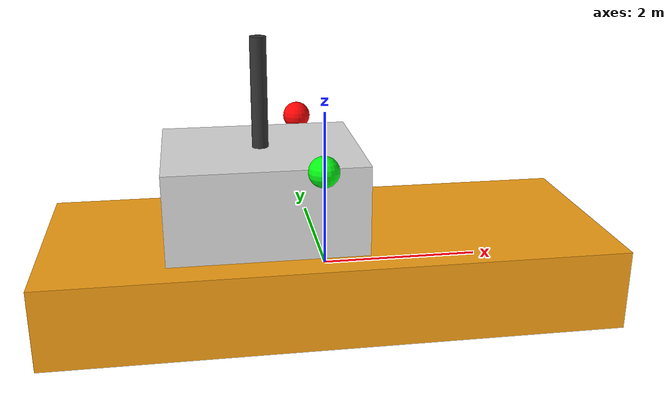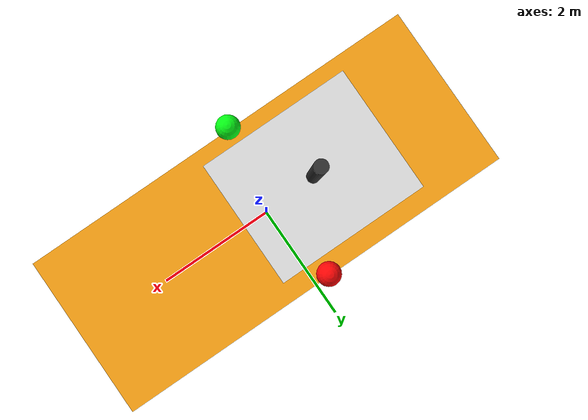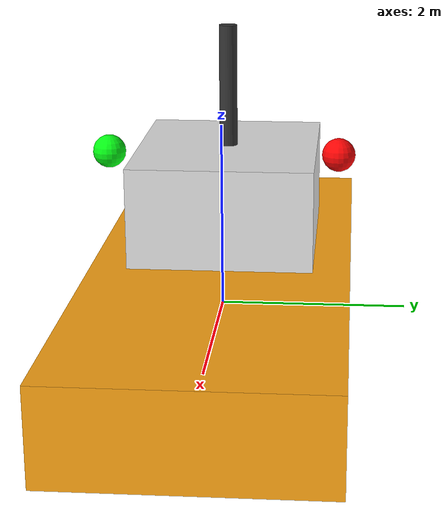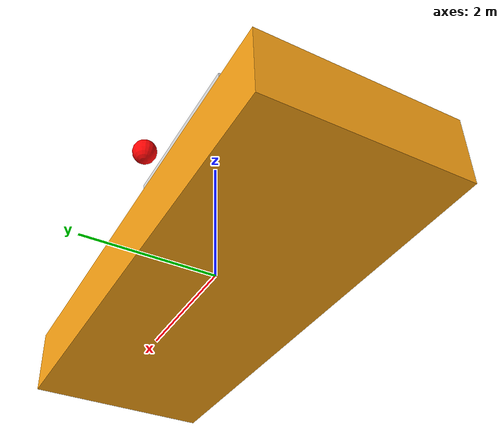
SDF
<?xml version="1.0"?>
<sdf version="1.7">
  <model name="codex_target_vessel">
    <static>true</static>
    <link name="hull">
      <collision name="hull_collision">
        <geometry><box><size>7.0 2.8 1.0</size></box></geometry>
      </collision>
      <visual name="hull_visual">
        <geometry><box><size>7.0 2.8 1.0</size></box></geometry>
        <material>
          <ambient>0.95 0.55 0.05 1</ambient>
          <diffuse>1.0 0.65 0.08 1</diffuse>
        </material>
      </visual>
      <visual name="cabin_visual">
        <pose>-0.8 0 1.05 0 0 0</pose>
        <geometry><box><size>2.4 2.0 1.1</size></box></geometry>
        <material>
          <ambient>0.9 0.9 0.9 1</ambient>
          <diffuse>0.9 0.9 0.9 1</diffuse>
        </material>
      </visual>
      <visual name="mast_visual">
        <pose>-0.8 0 2.15 0 0 0</pose>
        <geometry><cylinder><radius>0.10</radius><length>1.6</length></cylinder></geometry>
        <material>
          <ambient>0.15 0.15 0.15 1</ambient>
          <diffuse>0.2 0.2 0.2 1</diffuse>
        </material>
      </visual>
      <visual name="port_navigation_light">
        <pose>-0.2 1.25 1.65 0 0 0</pose>
        <geometry><sphere><radius>0.18</radius></sphere></geometry>
        <material><ambient>0.9 0.02 0.02 1</ambient><diffuse>1 0.02 0.02 1</diffuse></material>
      </visual>
      <visual name="starboard_navigation_light">
        <pose>-0.2 -1.25 1.65 0 0 0</pose>
        <geometry><sphere><radius>0.18</radius></sphere></geometry>
        <material><ambient>0.02 0.9 0.06 1</ambient><diffuse>0.02 1 0.08 1</diffuse></material>
      </visual>
    </link>
  </model>
</sdf>
